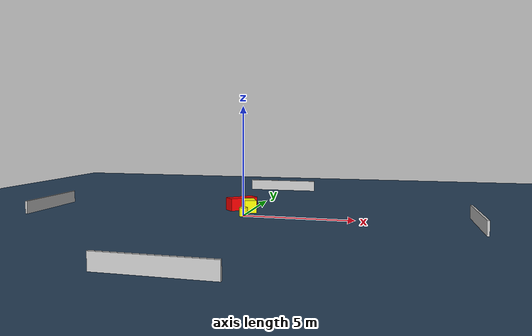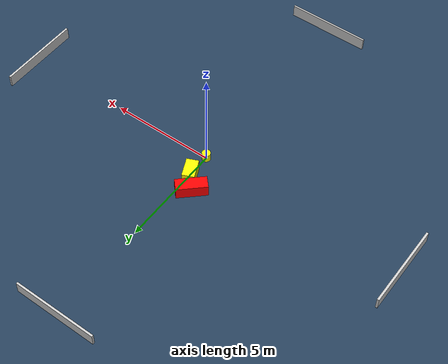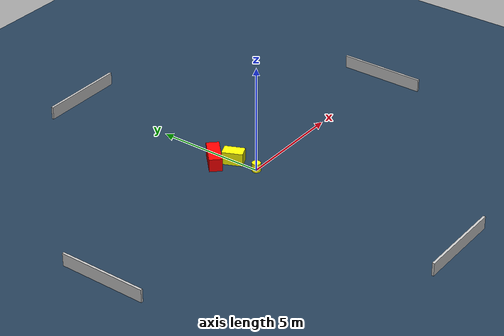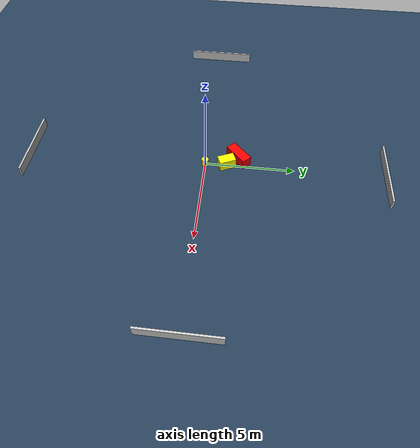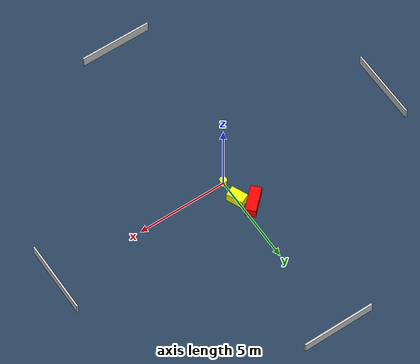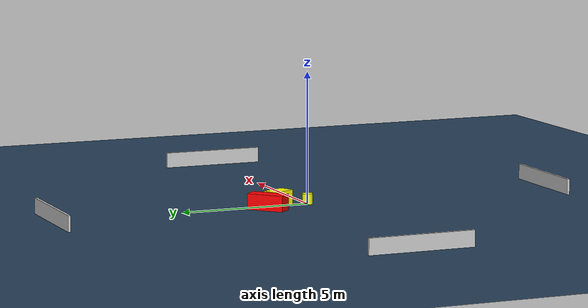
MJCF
<?xml version="1.0" ?>
<mujoco model="generated_environment">
  <option timestep="0.01" integrator="RK4" cone="elliptic"/>
  <default>
    <geom density="1"/>
  </default>
  <asset>
    <texture builtin="gradient" height="3072" name="skybox" rgb1="0.3 0.5 0.7" rgb2="0 0 0" type="skybox" width="512"/>
    <texture builtin="checker" height="300" name="groundplane" rgb1="0.2 0.3 0.4" rgb2="0.1 0.2 0.3" type="2d" width="300"/>
    <material name="groundplane" reflectance="0.2" texrepeat="5 5" texture="groundplane"/>
  </asset>
  <worldbody>
    <light dir="0 0 -1" directional="true" pos="0 0 1.5"/>
    <geom condim="3" friction="0.5 0.005 0.001" material="groundplane" name="floor" pos="0 0 0" size="0 0 0.05" type="plane"/>
    <body name="walls">
      <geom name="wall_1" condim="4" pos="-10.0 0.0 0.3" rgba="0.800000011920929 0.800000011920929 0.800000011920929 1.0" size="0.05 2.0 0.3" type="box"/>
      <geom name="wall_2" condim="4" pos="10.0 0.0 0.3" rgba="0.800000011920929 0.800000011920929 0.800000011920929 1.0" size="0.05 2.0 0.3" type="box"/>
      <geom name="wall_3" condim="4" pos="0.0 -10.0 0.3" rgba="0.800000011920929 0.800000011920929 0.800000011920929 1.0" size="2.0 0.05 0.3" type="box"/>
      <geom name="wall_4" condim="4" pos="0.0 10.0 0.3" rgba="0.800000011920929 0.800000011920929 0.800000011920929 1.0" size="2.0 0.05 0.3" type="box"/>
    </body>
    <body name="robot">
      <joint name="joint_x" type="slide" pos="0 0 0" axis="1 0 0"/>
      <joint name="joint_y" type="slide" pos="0 0 0" axis="0 1 0"/>
      <geom name="robot" type="cylinder" pos="0.0 0.0 0.2" size="0.2 0.2 0.0" mass="5.0" friction="1.0 0.005 0.0001" condim="4" rgba="1.0 1.0 0.0 1.0"/>
    </body>
    <body name="obstacle_1_movable">
      <geom name="obstacle_1_movable" condim="4" pos="-0.03188862665628615 1.2031628120235633 0.3" euler="0 0 113.79151617445281" friction="0.0 0.005 0.001" rgba="1.0 1.0 0.0 1.0" size="0.46746024112686224 0.28609422163538334 0.3" type="box" mass="0.1"/>
      <joint type="free"/>
    </body>
    <body name="obstacle_2_static">
      <geom name="obstacle_2_static" condim="4" pos="-0.5742585291315482 1.8457797023771618 0.3" euler="0 0 43.373869322768826" friction="0.0 0.005 0.001" rgba="1.0 0.0 0.0 1.0" size="0.7165796692495803 0.29003364656016867 0.3" type="box"/>
    </body>
  </worldbody>
  <actuator>
    <motor name="actuator_x" joint="joint_x" gear="1" ctrlrange="-1 1"/>
    <motor name="actuator_y" joint="joint_y" gear="1" ctrlrange="-1 1"/>
  </actuator>
</mujoco>
